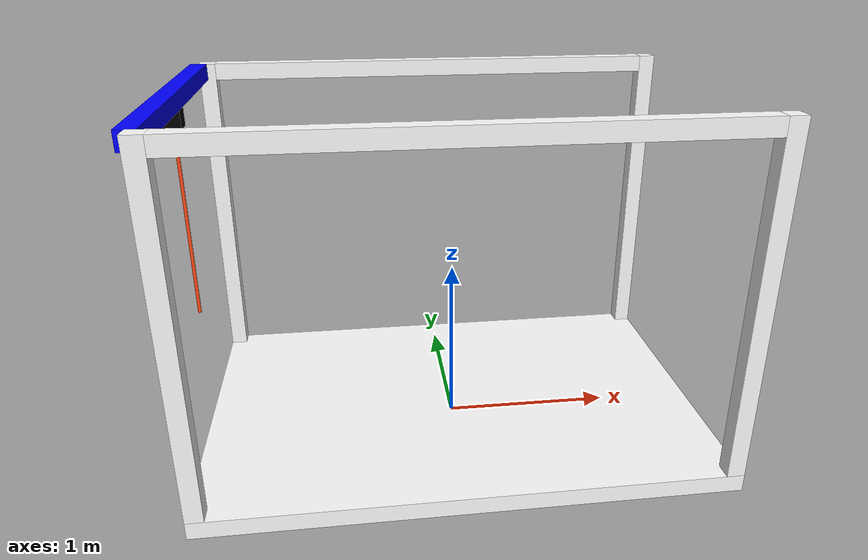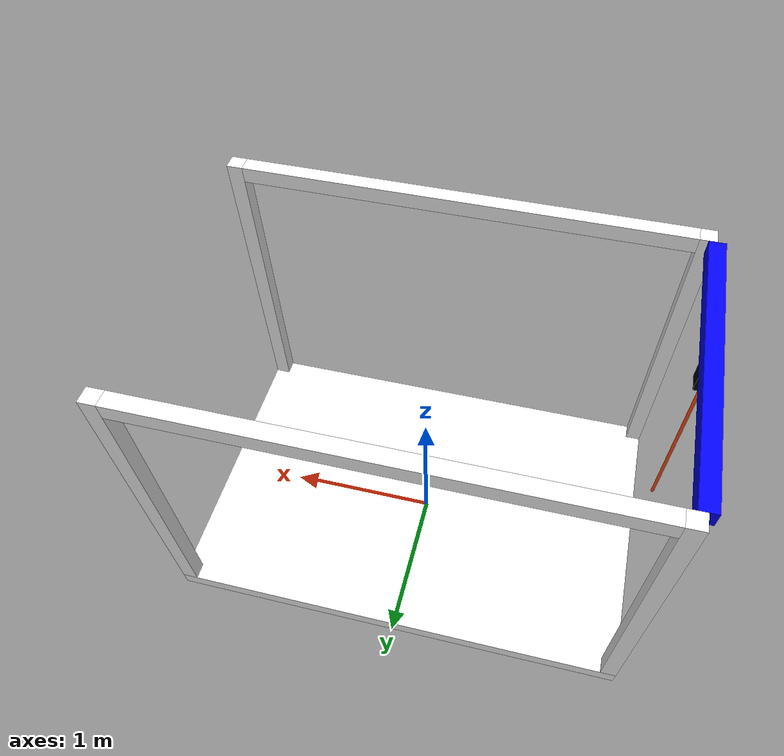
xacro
<?xml version="1.0"?>
<robot xmlns:xacro="http://www.ros.org/wiki/xacro" >

<!-- Mass properties -->
<xacro:property name="bridge_weight" value="3" />
<xacro:property name="trolley_weight" value="3" />

<xacro:macro name="inertial_box" params="mass x y z *origin">
    <inertial>
        <xacro:insert_block name="origin"/>
        <mass value="${mass}" />
        <inertia ixx="${(1/12) * mass * (y*y+z*z)}" ixy="0.0" ixz="0.0"
                iyy="${(1/12) * mass * (x*x+z*z)}" iyz="0.0"
                izz="${(1/12) * mass * (x*x+y*y)}" />
    </inertial>
</xacro:macro>

<xacro:macro name="inertial_cylinder" params="mass length radius *origin">
        <inertial>
            <xacro:insert_block name="origin"/>
            <mass value="${mass}" />
            <inertia ixx="${(1/12) * mass * (3*radius*radius + length*length)}" ixy="0.0" ixz="0.0"
                    iyy="${(1/12) * mass * (3*radius*radius + length*length)}" iyz="0.0"
                    izz="${(1/2) * mass * (radius*radius)}" />
        </inertial>
    </xacro:macro>

    <material name="black">
        <color rgba="0 0 0 1" />
    </material>

    <material name="white">
        <color rgba="1 1 1 1" />
    </material>

    <material name="grey">
        <color rgba="0.2 0.2 0.2 1"/>
    </material>

    <material name="orange">
        <color rgba="1 0.3 0.1 1"/>
    </material>

    <material name="blue">
        <color rgba="0 0 1 1"/>
    </material>

<!--  0 0 0 link -->
    <link name="ground_link">
    </link>

    <!-- length and width of base plate-->
    <xacro:property name="base_plate_length" value="3" />
    <xacro:property name="base_plate_width" value="2"/>

    <!-- making base plate 0.1 M thick-->
    <joint name="base_plate_joint" type="fixed">
        <parent link="ground_link"/>
        <child link="base_plate"/>
        <origin xyz ="${-base_plate_length/2} ${-base_plate_width/2} 0"/>
    </joint>

    <link name="base_plate">
        <visual>
            <origin xyz = "${base_plate_length/2} ${base_plate_width/2} 0.05"/>
            <geometry>
                <box size="${base_plate_length} ${base_plate_width} 0.1"/>
            </geometry>
            <material name="white"/>
        </visual>
        <collision>
            <origin xyz = "${base_plate_length/2} ${base_plate_width/2} 0.05"/>
            <geometry>
                <box size="${base_plate_length} ${base_plate_width} 0.1"/>
            </geometry>
        </collision>
        <xacro:inertial_box mass="1000" x="${base_plate_length}" y="${base_plate_width}" z="0.1">
            <origin xyz = "${base_plate_length/2} ${base_plate_width/2} 0.05"/>
        </xacro:inertial_box>

    </link>

    <!-- uprights-->

    <xacro:property name="hight" value="2" />
    <xacro:property name="upright_width" value="0.1" />

    <joint name="upright_joint" type="fixed">
        <parent link="base_plate"/>
        <child link="upright"/>
        <origin xyz ="0 0 0.1"/>
    </joint>

    <link name="upright">
        <visual>
            <origin xyz = "${upright_width/2} ${upright_width/2} ${hight/2}"/>
            <geometry>
                <box size="${upright_width} ${upright_width} ${hight}"/>
            </geometry>
            <material name="white"/>
        </visual>

        <visual>
            <origin xyz = "${base_plate_length-upright_width/2} ${upright_width/2} ${hight/2}"/>
            <geometry>
                <box size="${upright_width} ${upright_width} ${hight}"/>
            </geometry>
            <material name="white"/>
        </visual>

        <visual>
            <origin xyz = "${base_plate_length-upright_width/2} ${base_plate_width-upright_width/2} ${hight/2}"/>
            <geometry>
                <box size="${upright_width} ${upright_width} ${hight}"/>
            </geometry>
            <material name="white"/>
        </visual>

        <visual>
            <origin xyz = "${upright_width/2} ${base_plate_width-upright_width/2} ${hight/2}"/>
            <geometry>
                <box size="${upright_width} ${upright_width} ${hight}"/>
            </geometry>
            <material name="white"/>
        </visual>

        <visual>
            <origin xyz = "${base_plate_length/2} ${upright_width/2} ${hight-upright_width/2}"/>
            <geometry>
                <box size="${base_plate_length-2*upright_width} ${upright_width} ${upright_width}"/>
            </geometry>
            <material name="white"/>
        </visual>

        <visual>
            <origin xyz = "${base_plate_length/2} ${base_plate_width-upright_width/2} ${hight-upright_width/2}"/>
            <geometry>
                <box size="${base_plate_length-2*upright_width} ${upright_width} ${upright_width}"/>
            </geometry>
            <material name="white"/>
        </visual>

        <collision>
            <origin xyz = "${upright_width/2} ${upright_width/2} ${hight/2}"/>
            <geometry>
                <box size="${upright_width} ${upright_width} ${hight}"/>
            </geometry>
        </collision>

        <collision>
            <origin xyz = "${base_plate_length-upright_width/2} ${upright_width/2} ${hight/2}"/>
            <geometry>
                <box size="${upright_width} ${upright_width} ${hight}"/>
            </geometry>
        </collision>

        <collision>
            <origin xyz = "${base_plate_length-upright_width/2} ${base_plate_width-upright_width/2} ${hight/2}"/>
            <geometry>
                <box size="${upright_width} ${upright_width} ${hight}"/>
            </geometry>
        </collision>

        <collision>
            <origin xyz = "${upright_width/2} ${base_plate_width-upright_width/2} ${hight/2}"/>
            <geometry>
                <box size="${upright_width} ${upright_width} ${hight}"/>
            </geometry>
        </collision>

        <collision>
            <origin xyz = "${base_plate_length/2} ${upright_width/2} ${hight-upright_width/2}"/>
            <geometry>
                <box size="${base_plate_length-2*upright_width} ${upright_width} ${upright_width}"/>
            </geometry>
        </collision>

        <collision>
            <origin xyz = "${base_plate_length/2} ${base_plate_width-upright_width/2} ${hight-upright_width/2}"/>
            <geometry>
                <box size="${base_plate_length-2*upright_width} ${upright_width} ${upright_width}"/>
            </geometry>
        </collision>

        <xacro:inertial_box mass="1000" x="${base_plate_length}" y="${base_plate_width}" z="${hight}">
            <origin xyz = "${base_plate_length/2} ${base_plate_width/2} ${hight/2}"/>
        </xacro:inertial_box>

    </link>

    <!-- BRIDGE-->
    <joint name="bridge_joint" type="prismatic">
        <origin xyz="0 ${base_plate_width/2} ${hight-upright_width}" rpy="0 0 0"/>
        <parent link="upright"/>
        <child link="bridge"/>
        <axis xyz="1 0 0"/>
        <limit lower="0.0" upper="${base_plate_length}" effort="100" velocity="4"/>
    </joint>

    <link name="bridge">
        <visual>
            <origin xyz="0 0 ${upright_width/2}" rpy="0 0 0"/>
            <geometry>
                <box size="${upright_width} ${base_plate_width-2*upright_width} ${upright_width}"/>
            </geometry>
            <material name="blue"/>
        </visual>

        <collision>
            <origin xyz="0 0 ${upright_width/2}" rpy="0 0 0"/>
            <geometry>
                <box size="${upright_width} ${base_plate_width-2*upright_width} ${upright_width}"/>
            </geometry>
        </collision>

        <xacro:inertial_box mass="${bridge_weight}"  x="${upright_width}" y="${base_plate_width-2*upright_width}" z="${upright_width}">
            <origin xyz="0 0 ${upright_width/2}" rpy="0 0 0"/>
        </xacro:inertial_box>

    </link>
<!-- Trolley-->
    <joint name="trolley_joint" type="prismatic">
        <origin xyz="0 0 0" rpy="0 0 0"/>
        <parent link="bridge"/>
        <child link="trolley"/>
        <axis xyz="0 1 0"/>
        <limit lower="${-base_plate_width/2+upright_width}" upper="${base_plate_width/2-upright_width}" effort="100" velocity="4"/>

    </joint>

    <link name="trolley">
        <visual>
            <origin xyz="0 0 ${-upright_width/2}" rpy="0 0 0"/>
            <geometry>
                <box size="${upright_width} ${upright_width} ${upright_width}"/>
            </geometry>
            <material name="black"/>
        </visual>

        <collision>
            <origin xyz="0 0 ${-upright_width/2}" rpy="0 0 0"/>
            <geometry>
                <box size="${upright_width} ${upright_width} ${upright_width}"/>
            </geometry>
        </collision>

        <xacro:inertial_box mass="${trolley_weight}"  x="${upright_width}" y="${upright_width}" z="${upright_width}">
            <origin xyz="0 0 ${-upright_width/2}" rpy="0 0 0"/>
        </xacro:inertial_box>

    </link>

    <!-- Ball joint-->
    <!-- 3 revolute joints-->
    <!-- thedax, theday, rotation-->
    <joint name="thedax_joint" type="revolute">
        <origin xyz="0 0 0" rpy="0 0 0"/>
        <parent link="trolley"/>
        <child link="bridge2x"/>
        <axis xyz="0 1 0"/>
        <limit lower="${-60*pi/180}" upper="${60*pi/180}" effort="100" velocity="100"/>

    </joint>

    <link name="bridge2x">
        <inertial>
            <origin xyz="0.0 0.0 0.0" rpy="0.0 0.0 0.0"/>
            <mass value="0.01"/>
            <inertia ixx="0.001" ixy="0.0" ixz="0.0" iyy="0.0" iyz="0.0" izz="0.0"/>
        </inertial>

    </link>

    <joint name="theday_joint" type="revolute">
        <origin xyz="0 0 0" rpy="0 0 0"/>
        <parent link="bridge2x"/>
        <child link="x2y"/>
        <axis xyz="1 0 0"/>
        <limit lower="${-60*pi/180}" upper="${60*pi/180}" effort="100" velocity="100"/>

    </joint>

    <link name="x2y">
        <inertial>
            <origin xyz="0.0 0.0 0.0" rpy="0.0 0.0 0.0"/>
            <mass value="0.01"/>
            <inertia ixx="0.001" ixy="0.0" ixz="0.0" iyy="0.0" iyz="0.0" izz="0.0"/>
        </inertial>

    </link>

    <joint name="rotation" type="continuous">
        <origin xyz="0 0 0" rpy="0 0 0"/>
        <parent link="x2y"/>
        <child link="cable"/>
        <axis xyz="0 0 1"/>

    </joint>
<!-- Cable-->
<xacro:property name="cable_length" value="1.2" />
    <link name="cable">
        <visual>
            <origin xyz="0.0 0.0 ${-cable_length/2}" rpy="0.0 0.0 0.0"/>
            <geometry>
                <cylinder radius="0.01" length="${cable_length}"/>
            </geometry>
            <material name="orange"/>
        </visual>

        <collision>
            <origin xyz="0.0 0.0 ${-cable_length/2}" rpy="0.0 0.0 0.0"/>
            <geometry>
                <cylinder radius="0.01" length="${cable_length}"/>
            </geometry>
        </collision>

        <xacro:inertial_cylinder mass="${0.2}" length="${cable_length}" radius="0.01">
            <origin xyz="0.0 0.0 ${-cable_length/2}" rpy="0.0 0.0 0.0"/>
        </xacro:inertial_cylinder>

    </link>

</robot>
